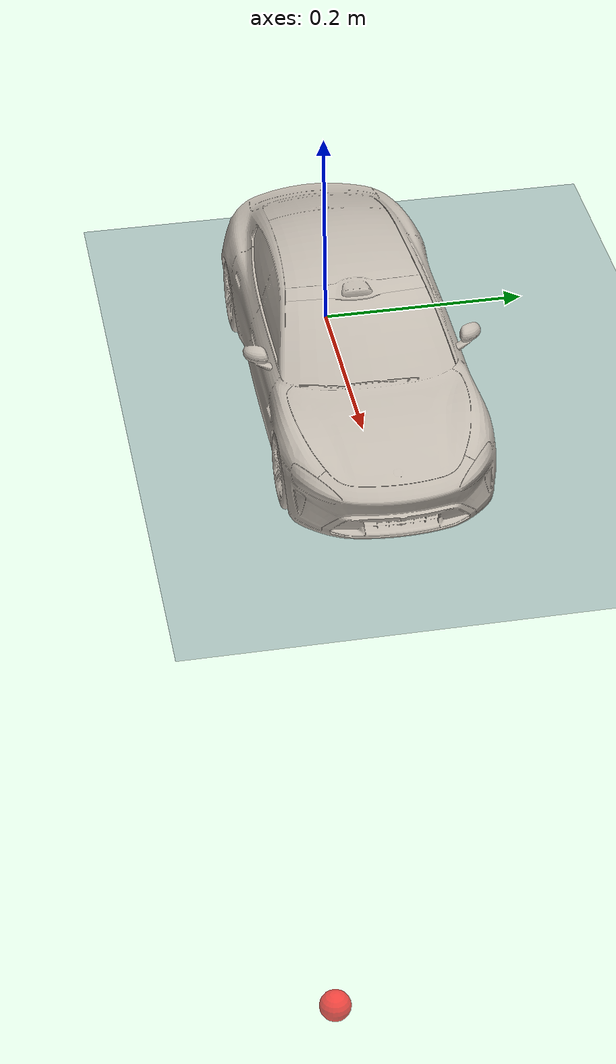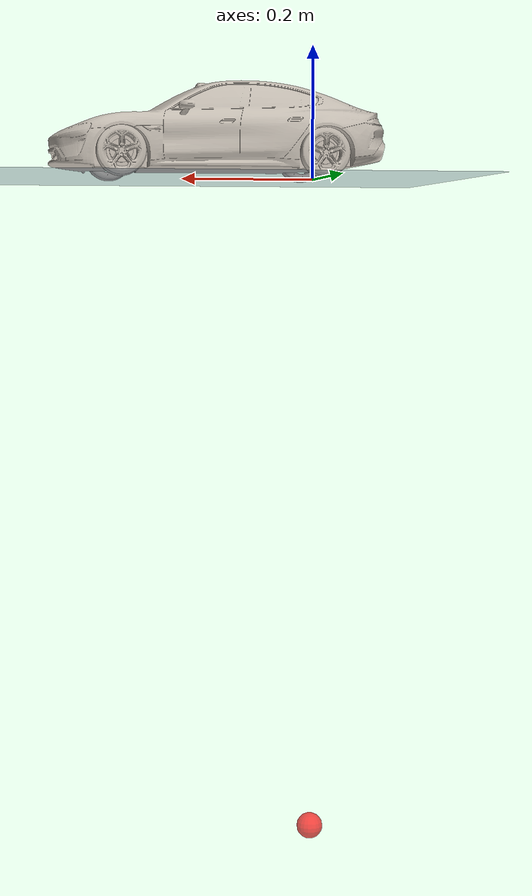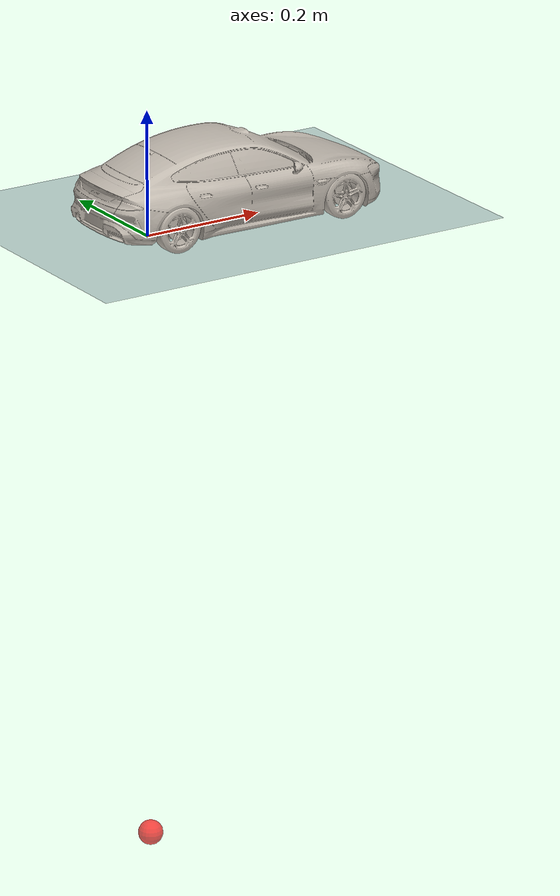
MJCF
<mujoco model="mjc_sim">
  <compiler angle="radian" autolimits="true" />
  <size njmax="500" nconmax="100"/>

  <visual>
    <global offwidth="1920" offheight="1080" />
    <headlight ambient="0.4 0.4 0.4" diffuse="0.5 0.5 0.5" specular="0.2 0.2 0.2"/>
  </visual>

  <!-- Car -->
  <include file="assets/car.xml"/>

  <!-- Floor -->
  <asset>
    <texture name="grid" type="2d" builtin="checker" width="512" height="512" rgb1=".1 .2 .3" rgb2=".2 .3 .4"/>
    <material name="grid" texture="grid" texrepeat="10 10" texuniform="true" reflectance=".2"/>
  </asset>
  <worldbody>
    <geom friction=".5 .005 .0001" name="floor" size="0 0 .25" type="plane" material="grid" condim="3"/>
  </worldbody>

  <!-- For debugging -->
  <worldbody>
    <site name="marker" pos="0.0 0.0 -1.0" type="sphere" size="0.02" rgba="1 0 0 0.7"/>
  </worldbody>
</mujoco>

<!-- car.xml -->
<mujoco model="car">
  <compiler angle="radian" autolimits="true"/>

  <asset>
    <mesh name="car_body" file="car/car_body.obj" />
    <mesh name="wheel" file="car/car_wheel.obj"/>
    <texture name="texture" type="2d" file="car/texture_map.png" />
    <material name="material" texture="texture" />
  </asset>

  <default>
    <default class="wheel">
      <geom type="ellipsoid" size="0.036 0.015 0.036" friction="2 0.005 0.0001" mass="1"/>
    </default>
    <default class="wheel_mesh">
      <geom type="mesh" mesh="wheel" material="material" contype="0" conaffinity="0"/>
    </default>
    <default class="steering">
      <joint type="hinge" axis="0 0 1" limited="true" frictionloss="0.01" damping="0.001" armature="0.0002" range="-0.38 0.38"/>
    </default>
    <default class="throttle">
      <joint type="hinge" axis="0 1 0" frictionloss="0.001" damping="0.01" armature="0.01" limited="false"/>
    </default>
  </default>

  <worldbody>
    <body name="car" pos="0.15 0.0 0.0" euler="0 0 0.0">
      <joint type="free"/>
      <geom mesh="car_body" pos="0 0 0" type="mesh" material="material" contype="0" conaffinity="0" group="2" mass="10"/>

      <body name="steering_wheel" pos="0.15 0 0.036">
        <joint class="steering" name="steering_wheel"/>
        <geom class="wheel" contype="0" conaffinity="0" group="2" mass="0.01" rgba="0 0 0 0.01"/>
      </body>

      <body name="wheel_fl" pos="0.15 0.085 0.036">
        <joint class="steering" name="wheel_fl_steering"/>
        <joint class="throttle" name="wheel_fl_throttle"/>
        <geom class="wheel" group="3"/>
        <geom class="wheel_mesh" group="2"/>
      </body>
      <body name="wheel_fr" pos="0.15 -0.085 0.036">
        <joint class="steering" name="wheel_fr_steering"/>
        <joint class="throttle" name="wheel_fr_throttle"/>
        <geom class="wheel" group="3"/>
        <geom class="wheel_mesh" euler="0 0 3.14159" group="2"/>
      </body>
      <body name="wheel_bl" pos="-0.15 0.085 0.036">
        <joint class="throttle" name="wheel_bl_throttle"/>
        <geom class="wheel" group="3"/>
        <geom class="wheel_mesh" group="2"/>
      </body>
      <body name="wheel_br" pos="-0.15 -0.085 0.036">
        <joint class="throttle" name="wheel_br_throttle"/>
        <geom class="wheel" group="3"/>
        <geom class="wheel_mesh" euler="0 0 3.14159" group="2"/>
      </body>
    </body>
  </worldbody>

  <actuator>
    <position class="steering" kp="25.0" name="steering_pos" joint="steering_wheel"/>
    <velocity kv="30" forcelimited="true" forcerange="-500 500" name="throttle_velocity" tendon="throttle"/>
  </actuator>

  <equality>
    <!-- taylor expansion of delta_l = arctan(L/(L/tan(delta) - W/2)) with L, W in reference to kinematic car model -->
    <joint joint1="wheel_fl_steering" joint2="steering_wheel" polycoef="0 1 0.283334 0.080278 -0.0717"/>
    <!-- taylor expansion of delta_r = arctan(L/(L/tan(delta) + W/2)) with L,W in reference to kinematic car model -->
    <joint joint1="wheel_fr_steering" joint2="steering_wheel" polycoef="0 1 -0.283334 0.080278 0.0717"/>
  </equality>

  <tendon>
    <fixed name="throttle">
      <joint joint="wheel_fl_throttle" coef="0.25"/>
      <joint joint="wheel_fr_throttle" coef="0.25"/>
      <joint joint="wheel_bl_throttle" coef="0.25"/>
      <joint joint="wheel_br_throttle" coef="0.25"/>
    </fixed>
  </tendon>
</mujoco>
